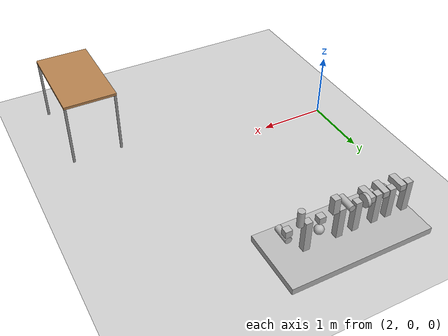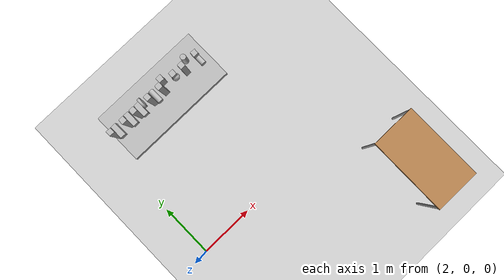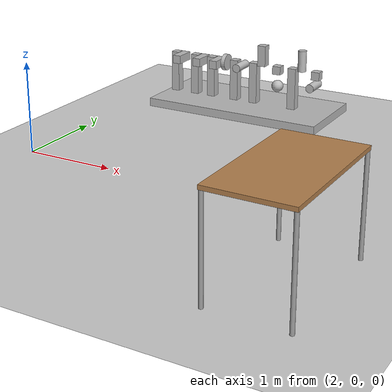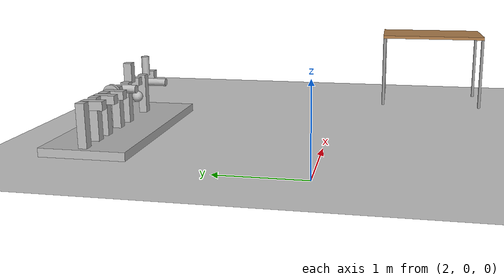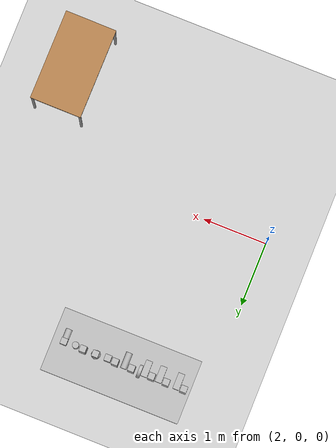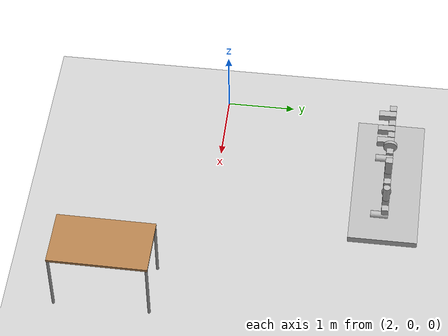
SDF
<sdf version="1.6">
 <world name="default">
  <model name="ground_plane">
   <static>1</static>
   <link name="link">
    <collision name="collision">
     <geometry><plane><normal>0 0 1</normal><size>100 100</size></plane></geometry>
     <surface><friction><ode><mu>100</mu><mu2>50</mu2></ode></friction></surface>
    </collision>
    <visual name="visual">
     <cast_shadows>0</cast_shadows>
     <geometry><plane><normal>0 0 1</normal><size>100 100</size></plane></geometry>
     <material>
      <script><uri>file://media/materials/scripts/gazebo.material</uri><name>Gazebo/Grey</name></script>
     </material>
    </visual>
   </link>
  </model>
  <model name="table">
   <static>0</static>
   <link name="link">
    <collision name="surface">
     <pose>0 0 1 0 -0 0</pose>
     <geometry><box><size>1.5 0.8 0.03</size></box></geometry>
     <surface><friction><ode><mu>0.6</mu><mu2>0.6</mu2></ode></friction></surface>
    </collision>
    <visual name="visual1">
     <pose>0 0 1 0 -0 0</pose>
     <geometry><box><size>1.4 0.8 0.04</size></box></geometry>
     <material>
      <script><uri>file://media/materials/scripts/gazebo.material</uri><name>Gazebo/Wood</name></script>
     </material>
    </visual>
    <collision name="front_left_leg">
     <pose>0.68 0.38 0.5 0 -0 0</pose>
     <geometry><cylinder><radius>0.02</radius><length>1</length></cylinder></geometry>
    </collision>
    <visual name="front_left_leg">
     <pose>0.68 0.38 0.5 0 -0 0</pose>
     <geometry><cylinder><radius>0.02</radius><length>1</length></cylinder></geometry>
     <material>
      <script><uri>file://media/materials/scripts/gazebo.material</uri><name>Gazebo/Grey</name></script>
     </material>
    </visual>
    <collision name="front_right_leg">
     <pose>0.68 -0.38 0.5 0 -0 0</pose>
     <geometry><cylinder><radius>0.02</radius><length>1</length></cylinder></geometry>
    </collision>
    <visual name="front_right_leg">
     <pose>0.68 -0.38 0.5 0 -0 0</pose>
     <geometry><cylinder><radius>0.02</radius><length>1</length></cylinder></geometry>
     <material>
      <script><uri>file://media/materials/scripts/gazebo.material</uri><name>Gazebo/Grey</name></script>
     </material>
    </visual>
    <collision name="back_right_leg">
     <pose>-0.68 -0.38 0.5 0 -0 0</pose>
     <geometry><cylinder><radius>0.02</radius><length>1</length></cylinder></geometry>
    </collision>
    <visual name="back_right_leg">
     <pose>-0.68 -0.38 0.5 0 -0 0</pose>
     <geometry><cylinder><radius>0.02</radius><length>1</length></cylinder></geometry>
     <material>
      <script><uri>file://media/materials/scripts/gazebo.material</uri><name>Gazebo/Grey</name></script>
     </material>
    </visual>
    <collision name="back_left_leg">
     <pose>-0.68 0.38 0.5 0 -0 0</pose>
     <geometry><cylinder><radius>0.02</radius><length>1</length></cylinder></geometry>
    </collision>
    <visual name="back_left_leg">
     <pose>-0.68 0.38 0.5 0 -0 0</pose>
     <geometry><cylinder><radius>0.02</radius><length>1</length></cylinder></geometry>
     <material>
      <script><uri>file://media/materials/scripts/gazebo.material</uri><name>Gazebo/Grey</name></script>
     </material>
    </visual>
    <inertial>
     <inertia><ixx>1</ixx><ixy>0</ixy><ixz>0</ixz><iyy>1</iyy><iyz>0</iyz><izz>1</izz></inertia>
     <mass>1</mass>
    </inertial>
   </link>
   <pose>5.61781 -1.31468 1e-06 0 -1.2e-05 -1.57685</pose>
  </model>
  <model name="demo_joint_types">
   <link name="heavy_base">
    <pose>0 0 0.05 0 -0 0</pose>
    <inertial>
     <mass>100</mass>
     <inertia><ixx>8.4167</ixx><ixy>0</ixy><ixz>0</ixz><iyy>40.417</iyy><iyz>0</iyz><izz>48.667</izz></inertia>
    </inertial>
    <collision name="heavy_base_collision"><geometry><box><size>2.2 1 0.1</size></box></geometry></collision>
    <visual name="heavy_base_visual">
     <geometry><box><size>2.2 1 0.1</size></box></geometry>
     <material>
      <script>
       <uri>model://demo_joint_types/materials/scripts</uri>
       <uri>model://demo_joint_types/materials/textures</uri>
       <name>demo_joint_types/legend</name>
      </script>
     </material>
    </visual>
   </link>
   <link name="revolute_base">
    <pose>-0.72 0 0.35 0 -0 0</pose>
    <inertial>
     <inertia>
      <ixx>0.021667</ixx>
      <ixy>0</ixy>
      <ixz>0</ixz>
      <iyy>0.021667</iyy>
      <iyz>0</iyz>
      <izz>0.0016667</izz>
     </inertia>
     <mass>1</mass>
    </inertial>
    <collision name="revolute_base_collision"><geometry><box><size>0.1 0.1 0.5</size></box></geometry></collision>
    <visual name="revolute_base_visual">
     <geometry><box><size>0.1 0.1 0.5</size></box></geometry>
     <material>
      <script>
       <uri>model://demo_joint_types/materials/scripts</uri>
       <uri>model://demo_joint_types/materials/textures</uri>
       <name>demo_joint_types/parent</name>
      </script>
     </material>
    </visual>
   </link>
   <joint name="revolute_base_to_heavy_base" type="fixed">
    <parent>heavy_base</parent>
    <child>revolute_base</child>
   </joint>
   <link name="revolute_arm">
    <pose>-0.61 -0.075 0.55 0 -0 0</pose>
    <inertial>
     <inertia>
      <ixx>0.0060417</ixx>
      <ixy>0</ixy>
      <ixz>0</ixz>
      <iyy>0.0016667</iyy>
      <iyz>0</iyz>
      <izz>0.0060417</izz>
     </inertia>
     <mass>1</mass>
    </inertial>
    <collision name="revolute_arm_collision"><geometry><box><size>0.1 0.25 0.1</size></box></geometry></collision>
    <visual name="revolute_arm_visual">
     <geometry><box><size>0.1 0.25 0.1</size></box></geometry>
     <material>
      <script>
       <uri>model://demo_joint_types/materials/scripts</uri>
       <uri>model://demo_joint_types/materials/textures</uri>
       <name>demo_joint_types/child</name>
      </script>
     </material>
    </visual>
   </link>
   <joint name="revolute_demo" type="revolute">
    <parent>revolute_base</parent>
    <child>revolute_arm</child>
    <axis>
     <xyz>1 0 0</xyz>
     <use_parent_model_frame>0</use_parent_model_frame>
     <limit><lower>-1e+16</lower><upper>1e+16</upper></limit>
     <dynamics><spring_reference>0</spring_reference><spring_stiffness>0</spring_stiffness></dynamics>
    </axis>
    <pose>0 0.075 0 0 -0 0</pose>
   </joint>
   <link name="gearbox_base">
    <pose>-0.49 0 0.35 0 -0 0</pose>
    <inertial>
     <inertia>
      <ixx>0.021667</ixx>
      <ixy>0</ixy>
      <ixz>0</ixz>
      <iyy>0.021667</iyy>
      <iyz>0</iyz>
      <izz>0.0016667</izz>
     </inertia>
     <mass>1</mass>
    </inertial>
    <collision name="gearbox_base_collision"><geometry><box><size>0.1 0.1 0.5</size></box></geometry></collision>
    <visual name="gearbox_base_visual">
     <geometry><box><size>0.1 0.1 0.5</size></box></geometry>
     <material>
      <script>
       <uri>model://demo_joint_types/materials/scripts</uri>
       <uri>model://demo_joint_types/materials/textures</uri>
       <name>demo_joint_types/reference</name>
      </script>
     </material>
    </visual>
   </link>
   <joint name="gearbox_base_to_heavy_base" type="fixed">
    <parent>heavy_base</parent>
    <child>gearbox_base</child>
   </joint>
   <link name="gearbox_input">
    <pose>-0.38 -0.075 0.55 0 -0 0</pose>
    <inertial>
     <inertia>
      <ixx>0.0060417</ixx>
      <ixy>0</ixy>
      <ixz>0</ixz>
      <iyy>0.0016667</iyy>
      <iyz>0</iyz>
      <izz>0.0060417</izz>
     </inertia>
     <mass>1</mass>
    </inertial>
    <collision name="gearbox_input_collision">
     <geometry><box><size>0.1 0.25 0.1</size></box></geometry>
    </collision>
    <visual name="gearbox_input_visual">
     <geometry><box><size>0.1 0.25 0.1</size></box></geometry>
     <material>
      <script>
       <uri>model://demo_joint_types/materials/scripts</uri>
       <uri>model://demo_joint_types/materials/textures</uri>
       <name>demo_joint_types/parent</name>
      </script>
     </material>
    </visual>
   </link>
   <link name="gearbox_output">
    <gravity>0</gravity>
    <pose>-0.3 0 0.55 3.14159 1.57079 3.14159</pose>
    <inertial>
     <mass>0.1</mass>
     <inertia>
      <ixx>0.00027083</ixx>
      <ixy>0</ixy>
      <ixz>0</ixz>
      <iyy>0.00027083</iyy>
      <iyz>0</iyz>
      <izz>0.0005</izz>
     </inertia>
    </inertial>
    <collision name="gearbox_output_collision">
     <geometry><cylinder><radius>0.1</radius><length>0.05</length></cylinder></geometry>
    </collision>
    <visual name="gearbox_output_visual">
     <geometry><cylinder><radius>0.1</radius><length>0.05</length></cylinder></geometry>
     <material>
      <script>
       <uri>model://demo_joint_types/materials/scripts</uri>
       <uri>model://demo_joint_types/materials/textures</uri>
       <name>demo_joint_types/child</name>
      </script>
     </material>
    </visual>
   </link>
   <joint name="gearbox_input_joint" type="revolute">
    <parent>gearbox_base</parent>
    <child>gearbox_input</child>
    <axis>
     <xyz>1 0 0</xyz>
     <use_parent_model_frame>0</use_parent_model_frame>
     <limit><lower>-1e+16</lower><upper>1e+16</upper></limit>
     <dynamics><spring_reference>0</spring_reference><spring_stiffness>0</spring_stiffness></dynamics>
    </axis>
    <pose>0 0.075 0 0 -0 0</pose>
   </joint>
   <joint name="gearbox_output_joint" type="revolute">
    <parent>gearbox_base</parent>
    <child>gearbox_output</child>
    <axis>
     <xyz>0 0 1</xyz>
     <use_parent_model_frame>0</use_parent_model_frame>
     <limit><lower>-1e+16</lower><upper>1e+16</upper></limit>
     <dynamics><spring_reference>0</spring_reference><spring_stiffness>0</spring_stiffness></dynamics>
    </axis>
   </joint>
   <joint name="gearbox_demo" type="gearbox">
    <parent>gearbox_input</parent>
    <child>gearbox_output</child>
    <gearbox_reference_body>gearbox_base</gearbox_reference_body>
    <gearbox_ratio>5</gearbox_ratio>
    <axis>
     <xyz>0 0 1</xyz>
     <use_parent_model_frame>0</use_parent_model_frame>
     <limit><lower>-1e+16</lower><upper>1e+16</upper></limit>
     <dynamics><spring_reference>0</spring_reference><spring_stiffness>0</spring_stiffness></dynamics>
    </axis>
    <axis2>
     <xyz>0 0 1</xyz>
     <use_parent_model_frame>0</use_parent_model_frame>
     <dynamics><spring_reference>0</spring_reference><spring_stiffness>0</spring_stiffness></dynamics>
    </axis2>
   </joint>
   <link name="revolute2_base">
    <pose>-0.17 0 0.35 0 -0 0</pose>
    <inertial>
     <inertia>
      <ixx>0.021667</ixx>
      <ixy>0</ixy>
      <ixz>0</ixz>
      <iyy>0.021667</iyy>
      <iyz>0</iyz>
      <izz>0.0016667</izz>
     </inertia>
     <mass>1</mass>
    </inertial>
    <collision name="revolute2_base_collision">
     <geometry><box><size>0.1 0.1 0.5</size></box></geometry>
    </collision>
    <visual name="revolute2_base_visual">
     <geometry><box><size>0.1 0.1 0.5</size></box></geometry>
     <material>
      <script>
       <uri>model://demo_joint_types/materials/scripts</uri>
       <uri>model://demo_joint_types/materials/textures</uri>
       <name>demo_joint_types/parent</name>
      </script>
     </material>
    </visual>
   </link>
   <joint name="revolute2_base_to_heavy_base" type="fixed">
    <parent>heavy_base</parent>
    <child>revolute2_base</child>
   </joint>
   <link name="revolute2_arm">
    <pose>-0.06 -0.075 0.55 1.5708 -0 0</pose>
    <inertial>
     <inertia>
      <ixx>0.0058333</ixx>
      <ixy>0</ixy>
      <ixz>0</ixz>
      <iyy>0.0058333</iyy>
      <iyz>0</iyz>
      <izz>0.00125</izz>
     </inertia>
     <pose>-0.1 -0.1 0.1 0 -0 0</pose>
     <mass>1</mass>
    </inertial>
    <collision name="revolute2_arm_collision">
     <geometry><cylinder><radius>0.05</radius><length>0.25</length></cylinder></geometry>
    </collision>
    <visual name="revolute2_arm_visual">
     <geometry><cylinder><radius>0.05</radius><length>0.25</length></cylinder></geometry>
     <material>
      <script>
       <uri>model://demo_joint_types/materials/scripts</uri>
       <uri>model://demo_joint_types/materials/textures</uri>
       <name>demo_joint_types/child</name>
      </script>
     </material>
    </visual>
   </link>
   <joint name="revolute2_demo" type="revolute2">
    <parent>revolute2_base</parent>
    <child>revolute2_arm</child>
    <axis>
     <xyz>1 0 0</xyz>
     <use_parent_model_frame>0</use_parent_model_frame>
     <limit><lower>-1e+16</lower><upper>1e+16</upper></limit>
     <dynamics><spring_reference>0</spring_reference><spring_stiffness>0</spring_stiffness></dynamics>
    </axis>
    <axis2>
     <xyz>0 1 0</xyz>
     <use_parent_model_frame>0</use_parent_model_frame>
     <dynamics><spring_reference>0</spring_reference><spring_stiffness>0</spring_stiffness></dynamics>
    </axis2>
    <pose>0 0 -0.075 0 -0 0</pose>
   </joint>
   <link name="prismatic_base">
    <pose>0.09 0 0.35 0 -0 0</pose>
    <inertial>
     <inertia>
      <ixx>0.021667</ixx>
      <ixy>0</ixy>
      <ixz>0</ixz>
      <iyy>0.021667</iyy>
      <iyz>0</iyz>
      <izz>0.0016667</izz>
     </inertia>
     <mass>1</mass>
    </inertial>
    <collision name="prismatic_base_collision">
     <geometry><box><size>0.1 0.1 0.5</size></box></geometry>
    </collision>
    <visual name="prismatic_base_visual">
     <geometry><box><size>0.1 0.1 0.5</size></box></geometry>
     <material>
      <script>
       <uri>model://demo_joint_types/materials/scripts</uri>
       <uri>model://demo_joint_types/materials/textures</uri>
       <name>demo_joint_types/parent</name>
      </script>
     </material>
    </visual>
   </link>
   <joint name="prismatic_base_to_heavy_base" type="fixed">
    <parent>heavy_base</parent>
    <child>prismatic_base</child>
   </joint>
   <link name="prismatic_slide">
    <pose>0.2 0 0.7 0 -0 0</pose>
    <inertial>
     <inertia>
      <ixx>0.0060417</ixx>
      <ixy>0</ixy>
      <ixz>0</ixz>
      <iyy>0.0060417</iyy>
      <iyz>0</iyz>
      <izz>0.0016667</izz>
     </inertia>
     <mass>1</mass>
    </inertial>
    <collision name="prismatic_slide_collision">
     <geometry><box><size>0.1 0.1 0.25</size></box></geometry>
    </collision>
    <visual name="prismatic_slide_visual">
     <geometry><box><size>0.1 0.1 0.25</size></box></geometry>
     <material>
      <script>
       <uri>model://demo_joint_types/materials/scripts</uri>
       <uri>model://demo_joint_types/materials/textures</uri>
       <name>demo_joint_types/child</name>
      </script>
     </material>
    </visual>
   </link>
   <joint name="prismatic_demo" type="prismatic">
    <parent>prismatic_base</parent>
    <child>prismatic_slide</child>
    <axis>
     <xyz>0 0 1</xyz>
     <limit><lower>-0.25</lower><upper>0.25</upper></limit>
     <dynamics><spring_stiffness>100</spring_stiffness><spring_reference>0</spring_reference></dynamics>
     <use_parent_model_frame>0</use_parent_model_frame>
    </axis>
   </joint>
   <link name="ball_socket">
    <pose>0.4 0 0.55 0 -0 0</pose>
    <inertial>
     <inertia>
      <ixx>0.0016667</ixx>
      <ixy>0</ixy>
      <ixz>0</ixz>
      <iyy>0.0016667</iyy>
      <iyz>0</iyz>
      <izz>0.0016667</izz>
     </inertia>
     <mass>1</mass>
    </inertial>
    <collision name="ball_socket_collision"><geometry><box><size>0.1 0.1 0.1</size></box></geometry></collision>
    <visual name="ball_socket_visual">
     <geometry><box><size>0.1 0.1 0.1</size></box></geometry>
     <material>
      <script>
       <uri>model://demo_joint_types/materials/scripts</uri>
       <uri>model://demo_joint_types/materials/textures</uri>
       <name>demo_joint_types/parent</name>
      </script>
     </material>
    </visual>
   </link>
   <joint name="ball_socket_to_heavy_base" type="fixed">
    <parent>heavy_base</parent>
    <child>ball_socket</child>
   </joint>
   <link name="ball_ball">
    <pose>0.4 0 0.35 0 -0 0</pose>
    <inertial>
     <inertia>
      <ixx>0.00196</ixx>
      <ixy>0.001</ixy>
      <ixz>0.001</ixz>
      <iyy>0.00196</iyy>
      <iyz>0.001</iyz>
      <izz>0.00196</izz>
     </inertia>
     <pose>0.1 -0.1 0.1 0 -0 0</pose>
     <mass>1</mass>
    </inertial>
    <collision name="ball_ball_collision"><geometry><sphere><radius>0.07</radius></sphere></geometry></collision>
    <visual name="ball_ball_visual">
     <geometry><sphere><radius>0.07</radius></sphere></geometry>
     <material>
      <script>
       <uri>model://demo_joint_types/materials/scripts</uri>
       <uri>model://demo_joint_types/materials/textures</uri>
       <name>demo_joint_types/child</name>
      </script>
     </material>
    </visual>
   </link>
   <joint name="ball_demo" type="ball"><parent>ball_socket</parent><child>ball_ball</child></joint>
   <link name="screw_base">
    <pose>0.6 0 0.35 0 -0 0</pose>
    <inertial>
     <inertia>
      <ixx>0.021667</ixx>
      <ixy>0</ixy>
      <ixz>0</ixz>
      <iyy>0.021667</iyy>
      <iyz>0</iyz>
      <izz>0.0016667</izz>
     </inertia>
     <mass>1</mass>
    </inertial>
    <collision name="screw_base_collision"><geometry><box><size>0.1 0.1 0.5</size></box></geometry></collision>
    <visual name="screw_base_visual">
     <geometry><box><size>0.1 0.1 0.5</size></box></geometry>
     <material>
      <script>
       <uri>model://demo_joint_types/materials/scripts</uri>
       <uri>model://demo_joint_types/materials/textures</uri>
       <name>demo_joint_types/parent</name>
      </script>
     </material>
    </visual>
   </link>
   <joint name="screw_base_to_heavy_base" type="fixed">
    <parent>heavy_base</parent>
    <child>screw_base</child>
   </joint>
   <link name="screw_thread">
    <pose>0.71 0 0.7 0 -0 0</pose>
    <inertial>
     <inertia>
      <ixx>0.0058333</ixx>
      <ixy>0</ixy>
      <ixz>0</ixz>
      <iyy>0.0058333</iyy>
      <iyz>0</iyz>
      <izz>0.00125</izz>
     </inertia>
     <mass>1</mass>
    </inertial>
    <collision name="screw_thread_collision">
     <geometry><cylinder><radius>0.05</radius><length>0.25</length></cylinder></geometry>
    </collision>
    <visual name="screw_thread_visual">
     <geometry><cylinder><radius>0.05</radius><length>0.25</length></cylinder></geometry>
     <material>
      <script>
       <uri>model://demo_joint_types/materials/scripts</uri>
       <uri>model://demo_joint_types/materials/textures</uri>
       <name>demo_joint_types/child</name>
      </script>
     </material>
    </visual>
   </link>
   <joint name="screw_thread" type="screw">
    <parent>screw_base</parent>
    <child>screw_thread</child>
    <thread_pitch>20</thread_pitch>
    <axis>
     <xyz>0 0 1</xyz>
     <dynamics><spring_stiffness>0.2</spring_stiffness><spring_reference>0</spring_reference></dynamics>
     <use_parent_model_frame>0</use_parent_model_frame>
     <limit><lower>-1e+16</lower><upper>1e+16</upper></limit>
    </axis>
   </joint>
   <link name="universal_base">
    <pose>0.9 0 0.55 0 -0 0</pose>
    <inertial>
     <inertia>
      <ixx>0.0016667</ixx>
      <ixy>0</ixy>
      <ixz>0</ixz>
      <iyy>0.0016667</iyy>
      <iyz>0</iyz>
      <izz>0.0016667</izz>
     </inertia>
     <mass>1</mass>
    </inertial>
    <collision name="universal_base_collision">
     <geometry><box><size>0.1 0.1 0.1</size></box></geometry>
    </collision>
    <visual name="universal_base_visual">
     <geometry><box><size>0.1 0.1 0.1</size></box></geometry>
     <material>
      <script>
       <uri>model://demo_joint_types/materials/scripts</uri>
       <uri>model://demo_joint_types/materials/textures</uri>
       <name>demo_joint_types/parent</name>
      </script>
     </material>
    </visual>
   </link>
   <joint name="universal_base_to_heavy_base" type="fixed">
    <parent>heavy_base</parent>
    <child>universal_base</child>
   </joint>
   <link name="universal_shaft">
    <pose>0.9 -0.075 0.44 1.5708 -0 0</pose>
    <inertial>
     <inertia>
      <ixx>0.0058333</ixx>
      <ixy>0</ixy>
      <ixz>0</ixz>
      <iyy>0.0058333</iyy>
      <iyz>0</iyz>
      <izz>0.00125</izz>
     </inertia>
     <pose>-0.02 0.02 0 0 -0 0</pose>
     <mass>1</mass>
    </inertial>
    <collision name="universal_shaft_collision">
     <geometry><cylinder><radius>0.05</radius><length>0.25</length></cylinder></geometry>
    </collision>
    <visual name="universal_shaft_visual">
     <geometry><cylinder><radius>0.05</radius><length>0.25</length></cylinder></geometry>
     <material>
      <script>
       <uri>model://demo_joint_types/materials/scripts</uri>
       <uri>model://demo_joint_types/materials/textures</uri>
       <name>demo_joint_types/child</name>
      </script>
     </material>
    </visual>
   </link>
   <joint name="universal_demo" type="universal">
    <parent>universal_base</parent>
    <child>universal_shaft</child>
    <pose>0 0 -0.075 0 -0 0</pose>
   </joint>
   <link name="fixed_base">
    <pose>-1 0 0.35 0 -0 0</pose>
    <inertial>
     <inertia>
      <ixx>0.021667</ixx>
      <ixy>0</ixy>
      <ixz>0</ixz>
      <iyy>0.021667</iyy>
      <iyz>0</iyz>
      <izz>0.0016667</izz>
     </inertia>
     <mass>1</mass>
    </inertial>
    <collision name="fixed_base_collision"><geometry><box><size>0.1 0.1 0.5</size></box></geometry></collision>
    <visual name="fixed_base_visual">
     <geometry><box><size>0.1 0.1 0.5</size></box></geometry>
     <material>
      <script>
       <uri>model://demo_joint_types/materials/scripts</uri>
       <uri>model://demo_joint_types/materials/textures</uri>
       <name>demo_joint_types/parent</name>
      </script>
     </material>
    </visual>
   </link>
   <link name="fixed_arm">
    <pose>-0.89 -0.075 0.55 0 -0 0</pose>
    <inertial>
     <inertia>
      <ixx>0.0060417</ixx>
      <ixy>0</ixy>
      <ixz>0</ixz>
      <iyy>0.0016667</iyy>
      <iyz>0</iyz>
      <izz>0.0060417</izz>
     </inertia>
     <mass>1</mass>
    </inertial>
    <collision name="fixed_arm_collision"><geometry><box><size>0.1 0.25 0.1</size></box></geometry></collision>
    <visual name="fixed_arm_visual">
     <geometry><box><size>0.1 0.25 0.1</size></box></geometry>
     <material>
      <script>
       <uri>model://demo_joint_types/materials/scripts</uri>
       <uri>model://demo_joint_types/materials/textures</uri>
       <name>demo_joint_types/child</name>
      </script>
     </material>
    </visual>
   </link>
   <joint name="fixed_base_to_heavy_base" type="fixed">
    <parent>heavy_base</parent>
    <child>fixed_base</child>
   </joint>
   <joint name="fixed_demo" type="fixed"><parent>fixed_base</parent><child>fixed_arm</child></joint>
   <pose>3.3388 2.51037 -1.5e-05 0 1.4e-05 -1.2e-05</pose>
  </model>
 </world>
</sdf>
